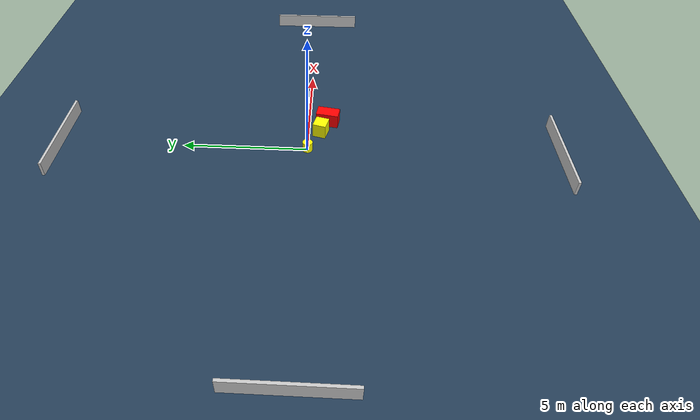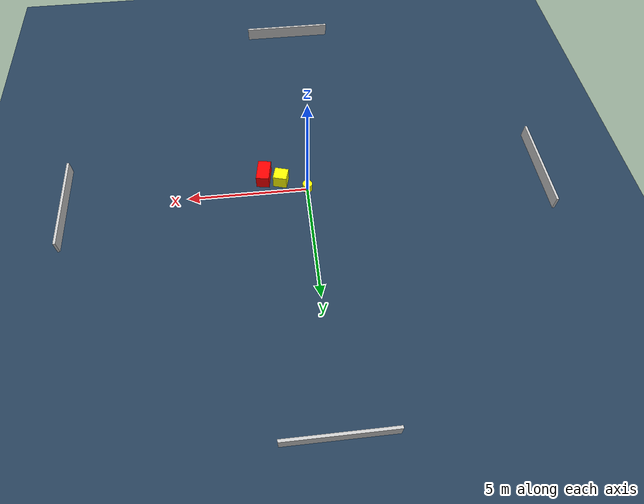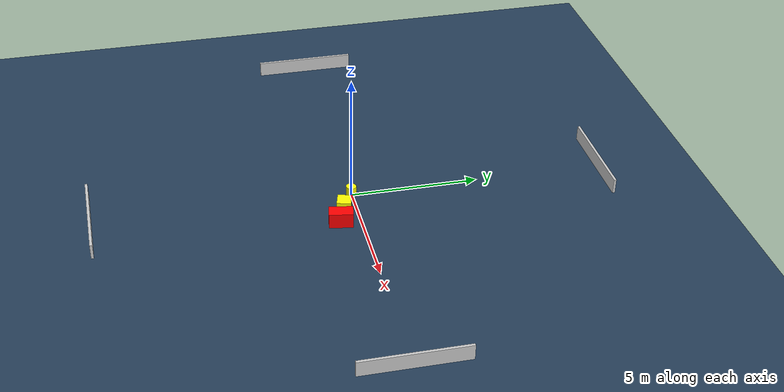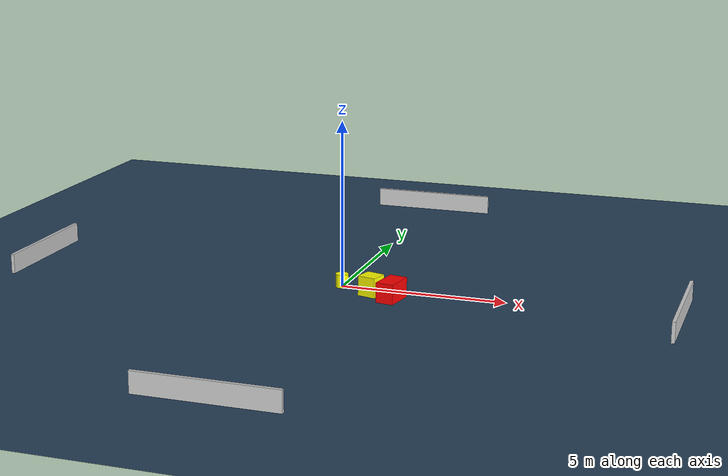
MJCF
<?xml version="1.0" ?>
<mujoco model="generated_environment">
  <option timestep="0.01" integrator="RK4" cone="elliptic"/>
  <default>
    <geom density="1"/>
  </default>
  <asset>
    <texture builtin="gradient" height="3072" name="skybox" rgb1="0.3 0.5 0.7" rgb2="0 0 0" type="skybox" width="512"/>
    <texture builtin="checker" height="300" name="groundplane" rgb1="0.2 0.3 0.4" rgb2="0.1 0.2 0.3" type="2d" width="300"/>
    <material name="groundplane" reflectance="0.2" texrepeat="5 5" texture="groundplane"/>
  </asset>
  <worldbody>
    <light dir="0 0 -1" directional="true" pos="0 0 1.5"/>
    <geom condim="3" friction="0.5 0.005 0.001" material="groundplane" name="floor" pos="0 0 0" size="0 0 0.05" type="plane"/>
    <body name="walls">
      <geom name="wall_1" condim="4" pos="-10.0 0.0 0.3" rgba="0.800000011920929 0.800000011920929 0.800000011920929 1.0" size="0.05 2.0 0.3" type="box"/>
      <geom name="wall_2" condim="4" pos="10.0 0.0 0.3" rgba="0.800000011920929 0.800000011920929 0.800000011920929 1.0" size="0.05 2.0 0.3" type="box"/>
      <geom name="wall_3" condim="4" pos="0.0 -10.0 0.3" rgba="0.800000011920929 0.800000011920929 0.800000011920929 1.0" size="2.0 0.05 0.3" type="box"/>
      <geom name="wall_4" condim="4" pos="0.0 10.0 0.3" rgba="0.800000011920929 0.800000011920929 0.800000011920929 1.0" size="2.0 0.05 0.3" type="box"/>
    </body>
    <body name="robot">
      <joint name="joint_x" type="slide" pos="0 0 0" axis="1 0 0"/>
      <joint name="joint_y" type="slide" pos="0 0 0" axis="0 1 0"/>
      <geom name="robot" type="cylinder" pos="0.0 0.0 0.2" size="0.2 0.2 0.0" mass="5.0" friction="1.0 0.005 0.0001" condim="4" rgba="1.0 1.0 0.0 1.0"/>
    </body>
    <body name="obstacle_1_movable">
      <geom name="obstacle_1_movable" condim="4" pos="1.071355829480487 -0.49849414601615133 0.3" euler="0 0 74.53676561126568" friction="0.0 0.005 0.001" rgba="1.0 1.0 0.0 1.0" size="0.27053377608928725 0.28451592341853194 0.3" type="box" mass="0.1"/>
      <joint type="free"/>
    </body>
    <body name="obstacle_2_static">
      <geom name="obstacle_2_static" condim="4" pos="1.7777805523922092 -0.7683238085180368 0.3" euler="0 0 260.21486712991555" friction="0.0 0.005 0.001" rgba="1.0 0.0 0.0 1.0" size="0.46182471801476965 0.26852695019472994 0.3" type="box"/>
    </body>
  </worldbody>
  <actuator>
    <motor name="actuator_x" joint="joint_x" gear="1" ctrlrange="-1 1"/>
    <motor name="actuator_y" joint="joint_y" gear="1" ctrlrange="-1 1"/>
  </actuator>
</mujoco>
